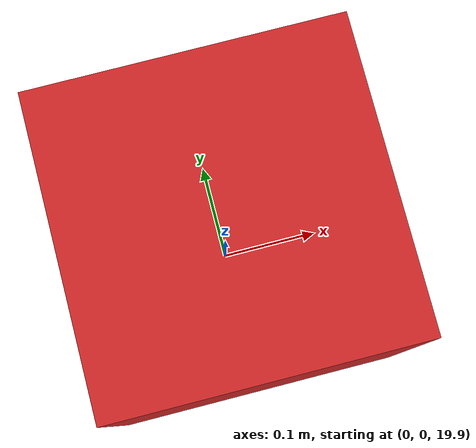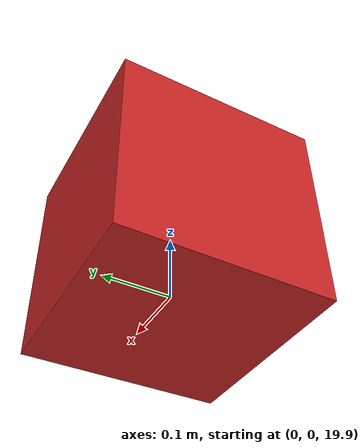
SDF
<?xml version="1.0" ?>
<sdf version="1.5">
<model name='box'>
	<pose>0 0 20 0 0 0</pose>
	<link name='base_link'>
		<inertial>
			<mass>0.4</mass>
			<inertia>
				<ixx>0.0001</ixx>
				<iyy>0.0001</iyy>
				<izz>0.0001</izz>
				<ixy>0</ixy>
				<ixz>0</ixz>
				<iyz>0</iyz>
			</inertia>
		</inertial>
		<collision name='collision'>
			<geometry>
				<box><size>0.3 0.3 0.3</size></box>
			</geometry>
			<surface>
				<friction>
					<ode>
						<mu>0.1</mu>
						<mu2>0.1</mu2>
					</ode>
				</friction>
			</surface>
		</collision>
		<visual name='visual'>
			<geometry>
				<box><size>0.3 0.3 0.3</size></box>
			</geometry>
			<material>
				<script>
					<uri>file://media/materials/scripts/gazebo.material</uri>
					<name>Gazebo/Red</name>
				</script>
			</material>
		</visual>
		<gravity>1</gravity>
		<self_collide>1</self_collide>
	</link>
	<plugin name='parachute_plugin' filename='libtest_parachute.so'>
		<robotNamespace/>
		<!-- message type std_msgs Bool : publish True or 1 to trigger-->
		<parachuteTriggerTopic>box</parachuteTriggerTopic>
	</plugin>
</model>
</sdf>
